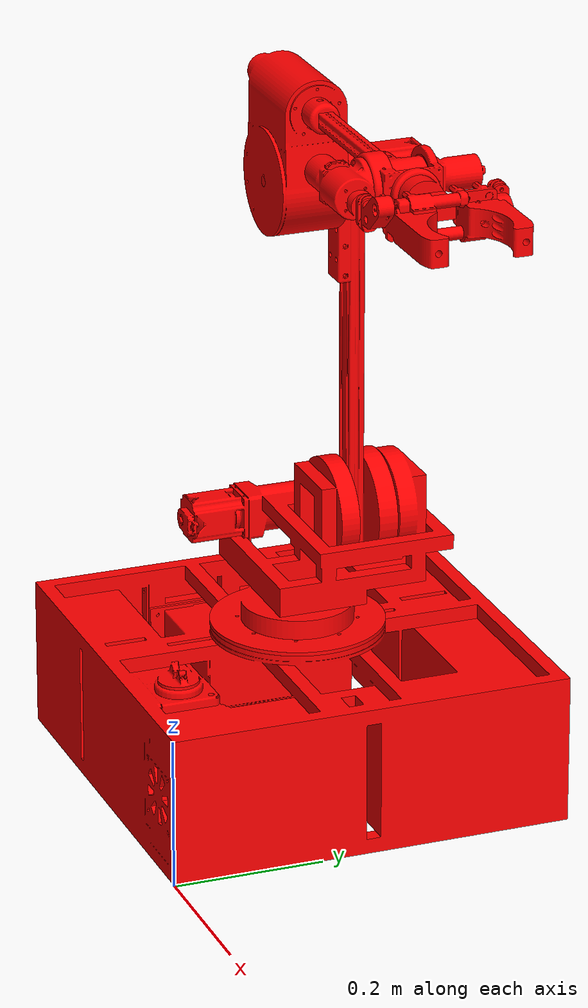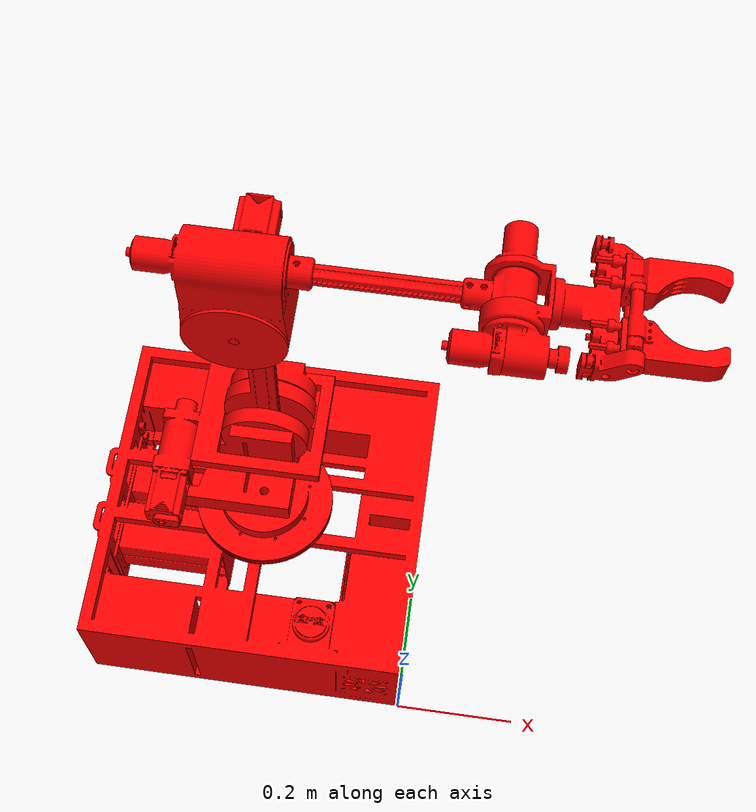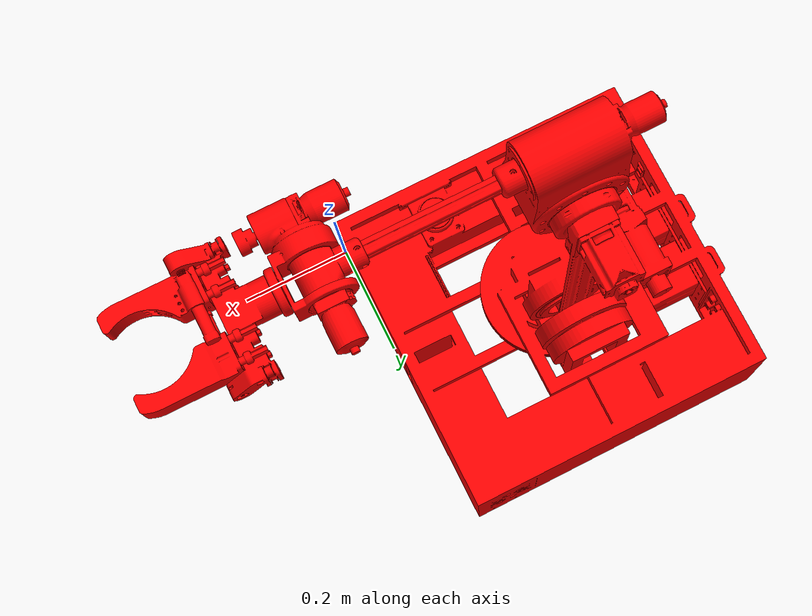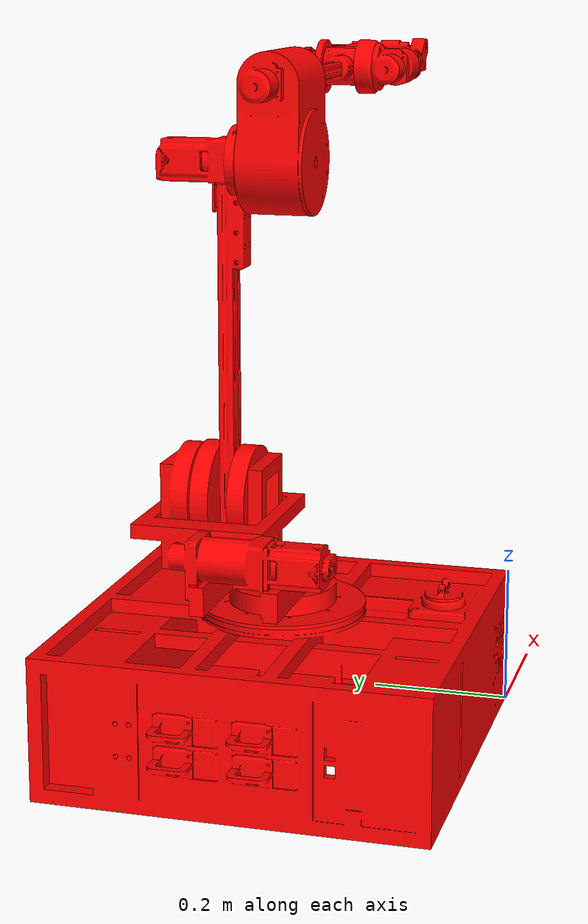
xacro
<?xml version="1.0" ?>
<robot name="nsra" xmlns:xacro="http://wiki.ros.org/xacro">
<xacro:include filename="robot.xacro" />
<xacro:robot />

<link name="world"/>
<link name="table"/>

<link name="camera_frame"/>
<joint name="world_to_table" type="fixed">
  <parent link="world"/>
  <child link="table"/>
  <origin xyz="0 0 0" rpy="0 0 0"/>
</joint>
<joint name="world_to_camera" type="fixed">
  <parent link="world"/>
  <child link="camera_frame"/>
  <origin xyz="-0.25 -0.5 1.25" rpy="0 3.14159 0"/>
</joint>
<joint name="table_to_robot" type="fixed">
  <parent link="table"/>
  <child link="base_link"/>
  <origin xyz="-0.47 0.27 0.5795" rpy="1.5708 0 0"/>
</joint>
</robot>

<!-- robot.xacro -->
<robot xmlns:xacro="http://wiki.ros.org/xacro">
<xacro:macro name="robot">
<link name="base_link">
  <inertial>
    <origin rpy="0 0 0" xyz="0.220772 -0.475604 0.001301"/>
    <mass value="205.712105"/>
    <inertia ixx="7.733138" ixy="0.003556" ixz="0.168204" iyy="13.401536" iyz="-0.186948" izz="6.805789"/>
  </inertial>
  <visual>
    <origin rpy="0 0 0" xyz="0 0 0"/>
    <geometry>
      <mesh filename="package://nsra_urdf/urdf/mm_stl/base_link.stl" scale="0.001 0.001 0.001"/>
    </geometry>
    <material name="silver">
      <color rgba="1 0 0 1"/>
    </material>
  </visual>
  <collision>
    <origin rpy="0 0 0" xyz="0 0 0"/>
    <geometry>
      <mesh filename="package://nsra_urdf/urdf/mm_stl/base_link.stl" scale="0.001 0.001 0.001"/>
    </geometry>
  </collision>
</link>
<link name="Component1_1">
  <inertial>
    <origin rpy="0 0 0" xyz="-0.03947300000000001 0.08378200000000002 -0.037645"/>
    <mass value="20.922358"/>
    <inertia ixx="0.157797" ixy="0.006062" ixz="-0.315131" iyy="0.205525" iyz="0.370636" izz="0.179141"/>
  </inertial>
  <visual>
    <origin rpy="0 0 0" xyz="-0.2 0.366257 -0.0"/>
    <geometry>
      <mesh filename="package://nsra_urdf/urdf/mm_stl/Component1_1.stl" scale="0.001 0.001 0.001"/>
    </geometry>
    <material name="silver">
      <color rgba="1 0 0 1"/>
    </material>
  </visual>
  <collision>
    <origin rpy="0 0 0" xyz="-0.2 0.366257 -0.0"/>
    <geometry>
      <mesh filename="package://nsra_urdf/urdf/mm_stl/Component1_1.stl" scale="0.001 0.001 0.001"/>
    </geometry>
  </collision>
</link>
<link name="Component2_1">
  <inertial>
    <origin rpy="0 0 0" xyz="0.0 0.226486 0.05349900000000002"/>
    <mass value="13.1521"/>
    <inertia ixx="0.673202" ixy="-0.0" ixz="-0.235485" iyy="0.032171" iyz="0.181962" izz="0.660051"/>
  </inertial>
  <visual>
    <origin rpy="0 0 0" xyz="-0.2 0.215257 0.12679"/>
    <geometry>
      <mesh filename="package://nsra_urdf/urdf/mm_stl/Component2_1.stl" scale="0.001 0.001 0.001"/>
    </geometry>
    <material name="silver">
      <color rgba="1 0 0 1"/>
    </material>
  </visual>
  <collision>
    <origin rpy="0 0 0" xyz="-0.2 0.215257 0.12679"/>
    <geometry>
      <mesh filename="package://nsra_urdf/urdf/mm_stl/Component2_1.stl" scale="0.001 0.001 0.001"/>
    </geometry>
  </collision>
</link>
<link name="Component3_1">
  <inertial>
    <origin rpy="0 0 0" xyz="-0.00927900000000001 0.04514400000000002 -0.043902"/>
    <mass value="11.720524"/>
    <inertia ixx="0.049256" ixy="0.006477" ixz="-0.002159" iyy="0.032758" iyz="0.00359" izz="0.066201"/>
  </inertial>
  <visual>
    <origin rpy="0 0 0" xyz="-0.2 -0.244743 -0.04731"/>
    <geometry>
      <mesh filename="package://nsra_urdf/urdf/mm_stl/Component3_1.stl" scale="0.001 0.001 0.001"/>
    </geometry>
    <material name="silver">
      <color rgba="1 0 0 1"/>
    </material>
  </visual>
  <collision>
    <origin rpy="0 0 0" xyz="-0.2 -0.244743 -0.04731"/>
    <geometry>
      <mesh filename="package://nsra_urdf/urdf/mm_stl/Component3_1.stl" scale="0.001 0.001 0.001"/>
    </geometry>
  </collision>
</link>
<link name="Component4_1">
  <inertial>
    <origin rpy="0 0 0" xyz="0.26249900000000004 -1.3000000000040757e-05 -0.019053"/>
    <mass value="2.84799"/>
    <inertia ixx="0.003606" ixy="-1e-06" ixz="-0.006586" iyy="0.035605" iyz="0.009884" izz="0.032806"/>
  </inertial>
  <visual>
    <origin rpy="0 0 0" xyz="-0.215 -0.350743 -0.00081"/>
    <geometry>
      <mesh filename="package://nsra_urdf/urdf/mm_stl/Component4_1.stl" scale="0.001 0.001 0.001"/>
    </geometry>
    <material name="silver">
      <color rgba="1 0 0 1"/>
    </material>
  </visual>
  <collision>
    <origin rpy="0 0 0" xyz="-0.215 -0.350743 -0.00081"/>
    <geometry>
      <mesh filename="package://nsra_urdf/urdf/mm_stl/Component4_1.stl" scale="0.001 0.001 0.001"/>
    </geometry>
  </collision>
</link>
<link name="Component5_1">
  <inertial>
    <origin rpy="0 0 0" xyz="-0.097078 1.199999999995649e-05 0.010579999999999999"/>
    <mass value="2.858845"/>
    <inertia ixx="0.004147" ixy="1e-06" ixz="0.028379" iyy="0.006606" iyz="-0.027606" izz="0.003957"/>
  </inertial>
  <visual>
    <origin rpy="0 0 0" xyz="-0.541 -0.350743 -0.04081"/>
    <geometry>
      <mesh filename="package://nsra_urdf/urdf/mm_stl/Component5_1.stl" scale="0.001 0.001 0.001"/>
    </geometry>
    <material name="silver">
      <color rgba="1 0 0 1"/>
    </material>
  </visual>
  <collision>
    <origin rpy="0 0 0" xyz="-0.541 -0.350743 -0.04081"/>
    <geometry>
      <mesh filename="package://nsra_urdf/urdf/mm_stl/Component5_1.stl" scale="0.001 0.001 0.001"/>
    </geometry>
  </collision>
</link>
<link name="Component6_1">
  <inertial>
    <origin rpy="0 0 0" xyz="-0.052066999999999974 7.999999999996898e-05 -0.00045599999999999997"/>
    <mass value="1.815773"/>
    <inertia ixx="0.005253" ixy="2e-06" ixz="-0.000236" iyy="0.006244" iyz="-0.000153" izz="0.00153"/>
  </inertial>
  <visual>
    <origin rpy="0 0 0" xyz="-0.593 -0.350743 -0.00081"/>
    <geometry>
      <mesh filename="package://nsra_urdf/urdf/mm_stl/Component6_1.stl" scale="0.001 0.001 0.001"/>
    </geometry>
    <material name="silver">
      <color rgba="1 0 0 1"/>
    </material>
  </visual>
  <collision>
    <origin rpy="0 0 0" xyz="-0.593 -0.350743 -0.00081"/>
    <geometry>
      <mesh filename="package://nsra_urdf/urdf/mm_stl/Component6_1.stl" scale="0.001 0.001 0.001"/>
    </geometry>
  </collision>
</link>
<link name="Component8_1">
  <inertial>
    <origin rpy="0 0 0" xyz="0.793409 0.19907400000000003 -0.272252"/>
    <mass value="1.320105"/>
    <inertia ixx="0.000682" ixy="-0.00011" ixz="-0.022235" iyy="0.002443" iyz="0.022711" izz="0.002199"/>
  </inertial>
  <visual>
    <origin rpy="0 0 0" xyz="0.182596 -0.148634 -0.225661"/>
    <geometry>
      <mesh filename="package://nsra_urdf/urdf/mm_stl/Component8_1.stl" scale="0.001 0.001 0.001"/>
    </geometry>
    <material name="silver">
      <color rgba="1 0 0 1"/>
    </material>
  </visual>
  <collision>
    <origin rpy="0 0 0" xyz="0.182596 -0.148634 -0.225661"/>
    <geometry>
      <mesh filename="package://nsra_urdf/urdf/mm_stl/Component8_1.stl" scale="0.001 0.001 0.001"/>
    </geometry>
  </collision>
</link>
<link name="Component7_1">
  <inertial>
    <origin rpy="0 0 0" xyz="0.793408 0.16314199999999998 -0.03907"/>
    <mass value="1.32011"/>
    <inertia ixx="0.000681" ixy="0.00011" ixz="0.022057" iyy="0.002445" iyz="-0.022338" izz="0.002201"/>
  </inertial>
  <visual>
    <origin rpy="0 0 0" xyz="0.182596 -0.190634 -0.085661"/>
    <geometry>
      <mesh filename="package://nsra_urdf/urdf/mm_stl/Component7_1.stl" scale="0.001 0.001 0.001"/>
    </geometry>
    <material name="silver">
      <color rgba="1 0 0 1"/>
    </material>
  </visual>
  <collision>
    <origin rpy="0 0 0" xyz="0.182596 -0.190634 -0.085661"/>
    <geometry>
      <mesh filename="package://nsra_urdf/urdf/mm_stl/Component7_1.stl" scale="0.001 0.001 0.001"/>
    </geometry>
  </collision>
</link>
<joint name="Rev1" type="revolute">
  <origin rpy="0 0 0" xyz="0.2 -0.366257 0.0"/>
  <parent link="base_link"/>
  <child link="Component1_1"/>
  <axis xyz="0.0 0.01 0.0"/>
  <limit effort="1" velocity="1.0" lower="-2.0944" upper="2.0944" />
</joint>
<transmission name="Rev1_tran">
  <type>transmission_interface/SimpleTransmission</type>
  <joint name="Rev1">
    <hardwareInterface>PositionJointInterface</hardwareInterface>
  </joint>
  <actuator name="Rev1_actr">
    <hardwareInterface>PositionJointInterface</hardwareInterface>
    <mechanicalReduction>1</mechanicalReduction>
  </actuator>
</transmission>
<joint name="Rev2" type="revolute">
  <origin rpy="0 0 0" xyz="0.0 0.151 -0.12679"/>
  <parent link="Component1_1"/>
  <child link="Component2_1"/>
  <axis xyz="0.0 -0.0 0.01"/>
  <limit effort="1" velocity="1.0" lower="-1.5708" upper="1.5708" />
</joint>
<transmission name="Rev2_tran">
  <type>transmission_interface/SimpleTransmission</type>
  <joint name="Rev2">
    <hardwareInterface>PositionJointInterface</hardwareInterface>
  </joint>
  <actuator name="Rev2_actr">
    <hardwareInterface>PositionJointInterface</hardwareInterface>
    <mechanicalReduction>1</mechanicalReduction>
  </actuator>
</transmission>
<joint name="Rev3" type="revolute">
  <origin rpy="0 0 0" xyz="0.0 0.459999 0.1741"/>
  <parent link="Component2_1"/>
  <child link="Component3_1"/>
  <axis xyz="0.0 -0.0 0.01"/>
  <limit effort="1" velocity="1.0" lower="-1.5708" upper="1.5708" />
</joint>
<transmission name="Rev3_tran">
  <type>transmission_interface/SimpleTransmission</type>
  <joint name="Rev3">
    <hardwareInterface>PositionJointInterface</hardwareInterface>
  </joint>
  <actuator name="Rev3_actr">
    <hardwareInterface>PositionJointInterface</hardwareInterface>
    <mechanicalReduction>1</mechanicalReduction>
  </actuator>
</transmission>
<joint name="Rev4" type="revolute">
  <origin rpy="0 0 0" xyz="0.015 0.106 -0.0465"/>
  <parent link="Component3_1"/>
  <child link="Component4_1"/>
  <axis xyz="0.01 0.0 -0.0"/>
  <limit effort="1" velocity="1.0" lower="-3.1415" upper="3.1415" />
</joint>
<transmission name="Rev4_tran">
  <type>transmission_interface/SimpleTransmission</type>
  <joint name="Rev4">
    <hardwareInterface>PositionJointInterface</hardwareInterface>
  </joint>
  <actuator name="Rev4_actr">
    <hardwareInterface>PositionJointInterface</hardwareInterface>
    <mechanicalReduction>1</mechanicalReduction>
  </actuator>
</transmission>
<joint name="Rev5" type="revolute">
  <origin rpy="0 0 0" xyz="0.326 0.0 0.04"/>
  <parent link="Component4_1"/>
  <child link="Component5_1"/>
  <axis xyz="0.0 -0.0 0.01"/>
  <limit effort="1" velocity="1.0" lower="-1.7453" upper="1.7453" />
</joint>
<transmission name="Rev5_tran">
  <type>transmission_interface/SimpleTransmission</type>
  <joint name="Rev5">
    <hardwareInterface>PositionJointInterface</hardwareInterface>
  </joint>
  <actuator name="Rev5_actr">
    <hardwareInterface>PositionJointInterface</hardwareInterface>
    <mechanicalReduction>1</mechanicalReduction>
  </actuator>
</transmission>
<joint name="Rev6" type="revolute">
  <origin rpy="0 0 0" xyz="0.052 0.0 -0.04"/>
  <parent link="Component5_1"/>
  <child link="Component6_1"/>
  <axis xyz="0.01 -0.0 -0.0"/>
  <limit effort="1" velocity="1.0" lower="-3.1415" upper="3.1415" />
</joint>
<transmission name="Rev6_tran">
  <type>transmission_interface/SimpleTransmission</type>
  <joint name="Rev6">
    <hardwareInterface>PositionJointInterface</hardwareInterface>
  </joint>
  <actuator name="Rev6_actr">
    <hardwareInterface>PositionJointInterface</hardwareInterface>
    <mechanicalReduction>1</mechanicalReduction>
  </actuator>
</transmission>
<joint name="Slider8" type="prismatic">
  <origin rpy="0 0 0" xyz="-0.775596 -0.202109 0.224851"/>
  <parent link="Component6_1"/>
  <child link="Component8_1"/>
  <axis xyz="0.0 -0.0 0.01"/>
  <limit effort="1" lower="0.0" upper="0.02" velocity="1.0"/>
</joint>
<transmission name="Slider8_tran">
  <type>transmission_interface/SimpleTransmission</type>
  <joint name="Slider8">
    <hardwareInterface>PositionJointInterface</hardwareInterface>
  </joint>
  <actuator name="Slider8_actr">
    <hardwareInterface>PositionJointInterface</hardwareInterface>
    <mechanicalReduction>1</mechanicalReduction>
  </actuator>
</transmission>
<joint name="Slider9" type="prismatic">
  <origin rpy="0 0 0" xyz="-0.775596 -0.160109 0.084851"/>
  <parent link="Component6_1"/>
  <child link="Component7_1"/>
  <axis xyz="-0.0 0.0 -0.01"/>
  <limit effort="1" lower="0.0" upper="0.02" velocity="1.0"/>
</joint>
<transmission name="Slider9_tran">
  <type>transmission_interface/SimpleTransmission</type>
  <joint name="Slider9">
    <hardwareInterface>PositionJointInterface</hardwareInterface>
  </joint>
  <actuator name="Slider9_actr">
    <hardwareInterface>PositionJointInterface</hardwareInterface>
    <mechanicalReduction>1</mechanicalReduction>
  </actuator>
</transmission>
<gazebo>
  <plugin filename="libgazebo_ros_control.so" name="control"/>
</gazebo>
</xacro:macro>
</robot>
